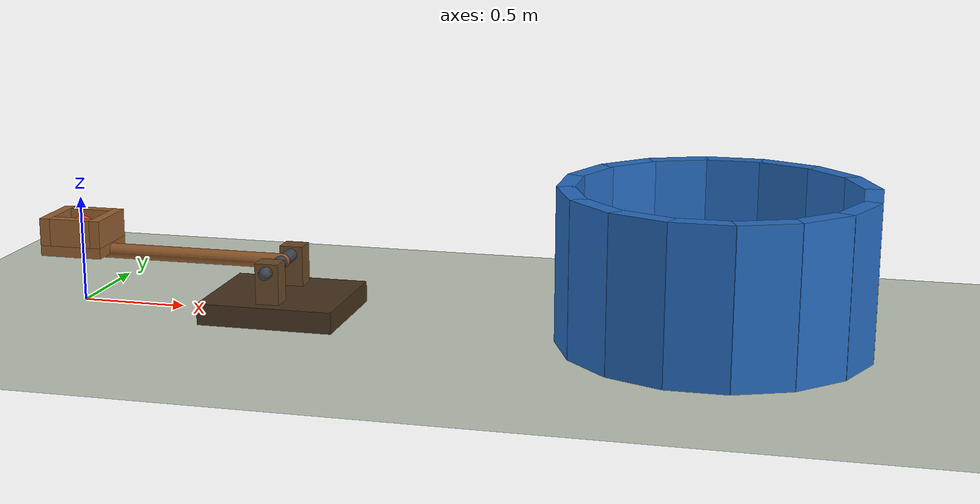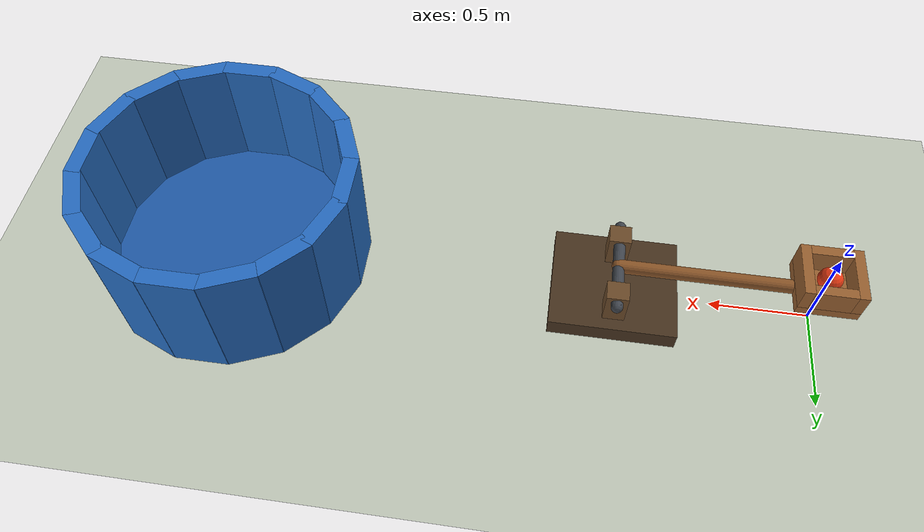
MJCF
<mujoco model="catapult_into_bucket">
  <compiler angle="radian" autolimits="true"/>
  <option timestep="0.002" gravity="0 0 -9.81" integrator="implicitfast" cone="elliptic" iterations="80" tolerance="1e-10"/>
  <size njmax="1000" nconmax="300"/>

  <visual>
    <headlight ambient="0.4 0.4 0.4" diffuse="0.7 0.7 0.7" specular="0.2 0.2 0.2"/>
    <global azimuth="120" elevation="-20"/>
  </visual>

  <worldbody>
    <light name="overhead_light" pos="1.5 -2 5" dir="0 0 -1"/>
    <camera name="overview" pos="1.5 -6 3" xyaxes="1 0 0 0 0.4 0.916515"/>
    <geom name="floor" type="plane" size="8 6 0.1" rgba="0.75 0.78 0.72 1" friction="1 0.03 0.03" condim="6" solref="0.008 1"/>

    <!-- The arm lifts the initially stationary ball, then stops at its upper limit. -->
    <body name="catapult_base" pos="1 0 0">
      <geom name="catapult_base_plate" type="box" pos="0 0 0.05" size="0.32 0.28 0.05" contype="0" conaffinity="0" rgba="0.28 0.20 0.12 1"/>
      <geom name="catapult_support_left" type="box" pos="0 -0.17 0.17" size="0.055 0.05 0.12" contype="0" conaffinity="0" rgba="0.42 0.29 0.16 1"/>
      <geom name="catapult_support_right" type="box" pos="0 0.17 0.17" size="0.055 0.05 0.12" contype="0" conaffinity="0" rgba="0.42 0.29 0.16 1"/>
      <geom name="catapult_axle" type="capsule" fromto="0 -0.24 0.25 0 0.24 0.25" size="0.03" contype="0" conaffinity="0" rgba="0.25 0.27 0.30 1"/>
    </body>

    <body name="catapult_arm" pos="1 0 0.25">
      <inertial pos="-0.5 0 0.02" mass="0.25" diaginertia="0.002 0.03 0.03"/>
      <joint name="catapult_hinge" type="hinge" axis="0 1 0" range="0 0.785398" damping="0.03" armature="0.001" solreflimit="0.004 1" solimplimit="0.99 0.999 0.001"/>
      <geom name="catapult_arm_beam" type="capsule" fromto="-0.92 0 0 0 0 0" size="0.035" contype="0" conaffinity="0" rgba="0.55 0.34 0.16 1"/>

      <!-- An open-topped cradle permits tangential release when the arm stops. -->
      <geom name="catapult_cradle_bottom" type="box" pos="-1 0 0.015" size="0.15 0.14 0.025" priority="3" friction="0.01 0.001 0.0001" condim="3" solref="0.006 1" rgba="0.60 0.38 0.19 1"/>
      <geom name="catapult_cradle_outer" type="box" pos="-1.125 0 0.105" size="0.025 0.14 0.065" priority="3" friction="0.01 0.001 0.0001" condim="3" solref="0.006 1" rgba="0.60 0.38 0.19 1"/>
      <geom name="catapult_cradle_inner" type="box" pos="-0.875 0 0.105" size="0.025 0.14 0.065" priority="3" friction="0.01 0.001 0.0001" condim="3" solref="0.006 1" rgba="0.60 0.38 0.19 1"/>
      <geom name="catapult_cradle_left" type="box" pos="-1 -0.115 0.105" size="0.10 0.025 0.065" priority="3" friction="0.01 0.001 0.0001" condim="3" solref="0.006 1" rgba="0.60 0.38 0.19 1"/>
      <geom name="catapult_cradle_right" type="box" pos="-1 0.115 0.105" size="0.10 0.025 0.065" priority="3" friction="0.01 0.001 0.0001" condim="3" solref="0.006 1" rgba="0.60 0.38 0.19 1"/>
    </body>

    <body name="ball" pos="0 0 0.35">
      <freejoint/>
      <geom name="ball" type="sphere" size="0.06" mass="0.1" friction="0.8 0.03 0.03" condim="6" solref="0.008 1" rgba="0.95 0.24 0.08 1"/>
    </body>

    <!-- The bucket centre is exactly 3 m from the initial ball centre. -->
    <!-- Overlapping primitive panels form a closed, open-topped bucket. -->
    <body name="bucket" pos="3 0 0.35">
      <geom name="bucket_bottom" type="cylinder" pos="0 0 -0.31" size="0.69 0.04" priority="2" friction="1 0.04 0.04" condim="6" solref="0.008 1" rgba="0.12 0.35 0.65 1"/>
      <geom name="bucket_wall_00" type="box" pos="0.65 0 0" euler="0 0 0" size="0.04 0.136 0.35" priority="2" friction="1 0.04 0.04" condim="6" solref="0.008 1" rgba="0.15 0.42 0.75 1"/>
      <geom name="bucket_wall_01" type="box" pos="0.600522 0.248744 0" euler="0 0 0.392699" size="0.04 0.136 0.35" priority="2" friction="1 0.04 0.04" condim="6" solref="0.008 1" rgba="0.15 0.42 0.75 1"/>
      <geom name="bucket_wall_02" type="box" pos="0.459619 0.459619 0" euler="0 0 0.785398" size="0.04 0.136 0.35" priority="2" friction="1 0.04 0.04" condim="6" solref="0.008 1" rgba="0.15 0.42 0.75 1"/>
      <geom name="bucket_wall_03" type="box" pos="0.248744 0.600522 0" euler="0 0 1.178097" size="0.04 0.136 0.35" priority="2" friction="1 0.04 0.04" condim="6" solref="0.008 1" rgba="0.15 0.42 0.75 1"/>
      <geom name="bucket_wall_04" type="box" pos="0 0.65 0" euler="0 0 1.570796" size="0.04 0.136 0.35" priority="2" friction="1 0.04 0.04" condim="6" solref="0.008 1" rgba="0.15 0.42 0.75 1"/>
      <geom name="bucket_wall_05" type="box" pos="-0.248744 0.600522 0" euler="0 0 1.963495" size="0.04 0.136 0.35" priority="2" friction="1 0.04 0.04" condim="6" solref="0.008 1" rgba="0.15 0.42 0.75 1"/>
      <geom name="bucket_wall_06" type="box" pos="-0.459619 0.459619 0" euler="0 0 2.356194" size="0.04 0.136 0.35" priority="2" friction="1 0.04 0.04" condim="6" solref="0.008 1" rgba="0.15 0.42 0.75 1"/>
      <geom name="bucket_wall_07" type="box" pos="-0.600522 0.248744 0" euler="0 0 2.748894" size="0.04 0.136 0.35" priority="2" friction="1 0.04 0.04" condim="6" solref="0.008 1" rgba="0.15 0.42 0.75 1"/>
      <geom name="bucket_wall_08" type="box" pos="-0.65 0 0" euler="0 0 3.141593" size="0.04 0.136 0.35" priority="2" friction="1 0.04 0.04" condim="6" solref="0.008 1" rgba="0.15 0.42 0.75 1"/>
      <geom name="bucket_wall_09" type="box" pos="-0.600522 -0.248744 0" euler="0 0 3.534292" size="0.04 0.136 0.35" priority="2" friction="1 0.04 0.04" condim="6" solref="0.008 1" rgba="0.15 0.42 0.75 1"/>
      <geom name="bucket_wall_10" type="box" pos="-0.459619 -0.459619 0" euler="0 0 3.926991" size="0.04 0.136 0.35" priority="2" friction="1 0.04 0.04" condim="6" solref="0.008 1" rgba="0.15 0.42 0.75 1"/>
      <geom name="bucket_wall_11" type="box" pos="-0.248744 -0.600522 0" euler="0 0 4.319690" size="0.04 0.136 0.35" priority="2" friction="1 0.04 0.04" condim="6" solref="0.008 1" rgba="0.15 0.42 0.75 1"/>
      <geom name="bucket_wall_12" type="box" pos="0 -0.65 0" euler="0 0 4.712389" size="0.04 0.136 0.35" priority="2" friction="1 0.04 0.04" condim="6" solref="0.008 1" rgba="0.15 0.42 0.75 1"/>
      <geom name="bucket_wall_13" type="box" pos="0.248744 -0.600522 0" euler="0 0 5.105088" size="0.04 0.136 0.35" priority="2" friction="1 0.04 0.04" condim="6" solref="0.008 1" rgba="0.15 0.42 0.75 1"/>
      <geom name="bucket_wall_14" type="box" pos="0.459619 -0.459619 0" euler="0 0 5.497787" size="0.04 0.136 0.35" priority="2" friction="1 0.04 0.04" condim="6" solref="0.008 1" rgba="0.15 0.42 0.75 1"/>
      <geom name="bucket_wall_15" type="box" pos="0.600522 -0.248744 0" euler="0 0 5.890486" size="0.04 0.136 0.35" priority="2" friction="1 0.04 0.04" condim="6" solref="0.008 1" rgba="0.15 0.42 0.75 1"/>
    </body>
  </worldbody>

  <actuator>
    <motor name="catapult_motor" joint="catapult_hinge" gear="1" ctrllimited="true" ctrlrange="0 6"/>
  </actuator>

  <keyframe>
    <key name="start" qpos="0 0 0 0.35 1 0 0 0" qvel="0 0 0 0 0 0 0" ctrl="4.4"/>
  </keyframe>
</mujoco>
